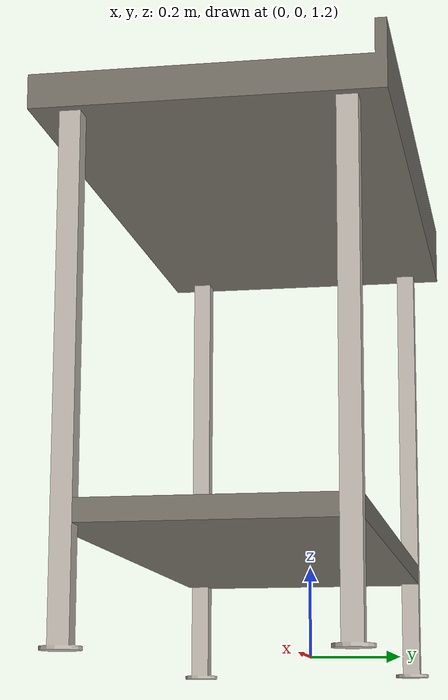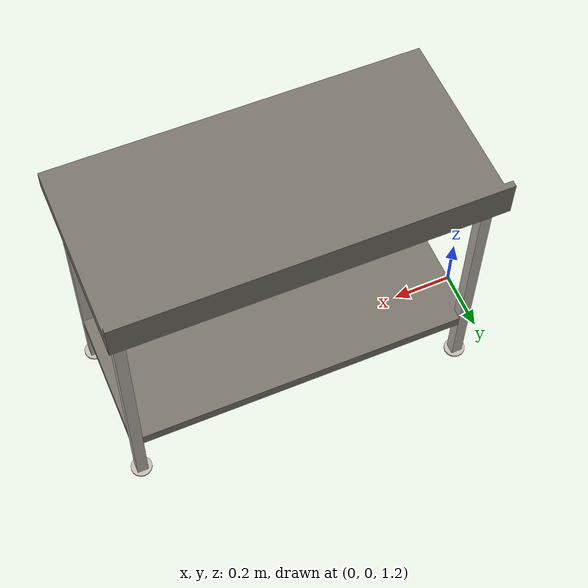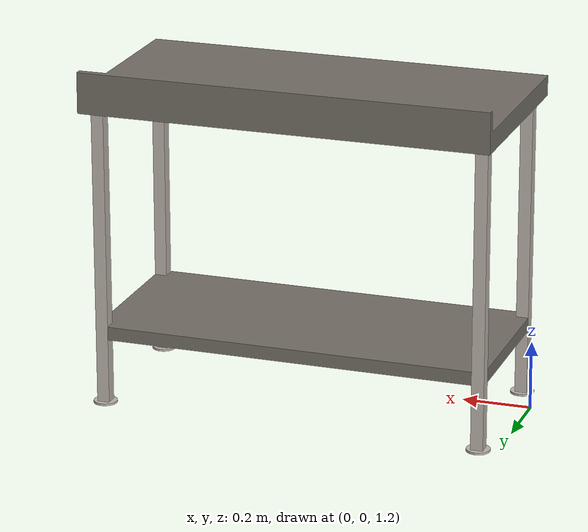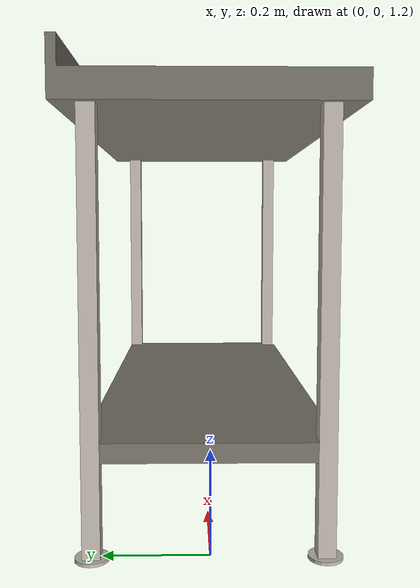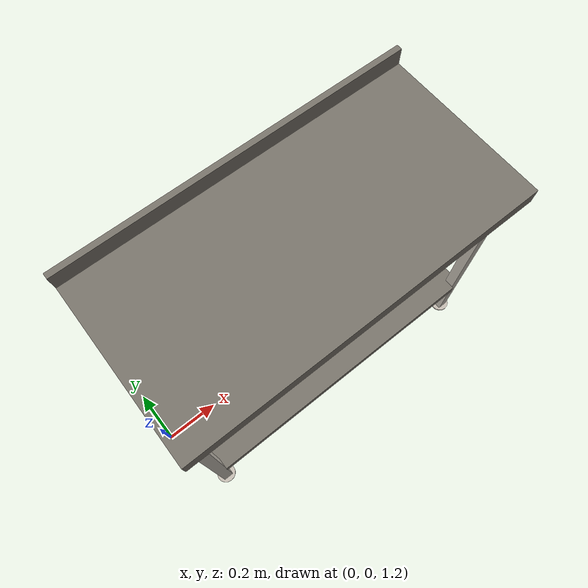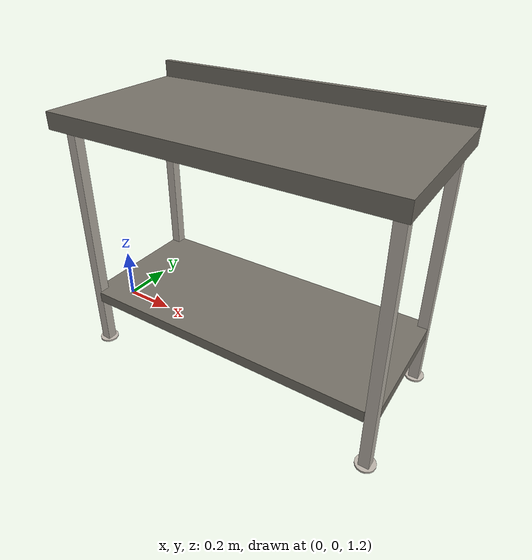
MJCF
<?xml version="1.0" encoding="utf-8"?>
<mujoco model="table">
  <compiler angle="radian" meshdir="assets" texturedir="assets" autolimits="true"/>
  <asset>
    <texture type="2d" name="table" file="table.png"/>
    <material name="table" specular="0.3" shininess="0.5" rgba="0.62 0.62 0.6 1" texture="table"/>
    <material name="table_legs" specular="0.3" shininess="0.5" rgba="1 1 1 1" texture="table"/>
    <mesh file="table.obj"/>
    <mesh file="table_legs.obj"/>
    <mesh file="table_collision_001.obj"/>
    <mesh file="table_collision_002.obj"/>
    <mesh file="table_collision_003.obj"/>
    <mesh file="table_collision_004.obj"/>
    <mesh file="table_collision_005.obj"/>
    <mesh file="table_collision_006.obj"/>
    <mesh file="table_collision_007.obj"/>
  </asset>

  <!-- ИМЕНА КЛАССОВ ДОЛЖНЫ БЫТЬ УНИКАЛЬНЫМИ ВО ВСЁМ МОДЕЛЕ -->
  <default>
    <default class="prop_table">          <!-- было: table -->
      <default class="prop_visual">       <!-- было: visual -->
        <geom type="mesh" contype="0" conaffinity="0" group="2" euler="1.5708 0 0"/>
      </default>
      <default class="prop_collision">    <!-- было: collision -->
        <geom type="mesh" group="3" euler="1.5708 0 0"/>
      </default>
    </default>
  </default>

  <worldbody>
    <!-- childclass и class тоже обновили -->
    <body name="table" childclass="prop_table" pos="0.65 0.0 1.15">
      <geom name="mesh"       mesh="table"       class="prop_visual"   material="table"/>
      <geom name="mesh_legs"  mesh="table_legs"  class="prop_visual"   material="table_legs"/>
      <geom name="collider_001" mesh="table_collision_001" class="prop_collision"/>
      <geom name="collider_002" mesh="table_collision_002" class="prop_collision"/>
      <geom name="collider_003" mesh="table_collision_003" class="prop_collision"/>
      <geom name="collider_004" mesh="table_collision_004" class="prop_collision"/>
      <geom name="collider_005" mesh="table_collision_005" class="prop_collision"/>
      <geom name="collider_006" mesh="table_collision_006" class="prop_collision"/>
      <geom name="collider_007" mesh="table_collision_007" class="prop_collision"/>
    </body>
  </worldbody>
</mujoco>
